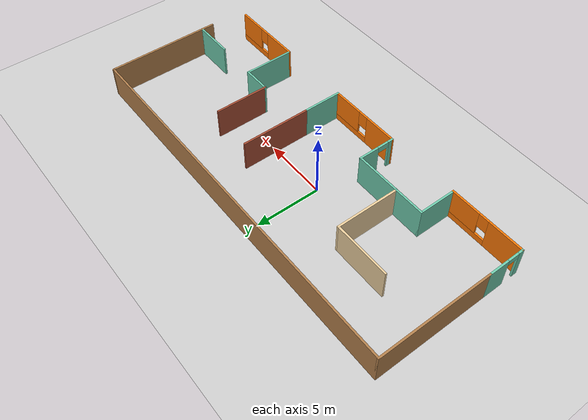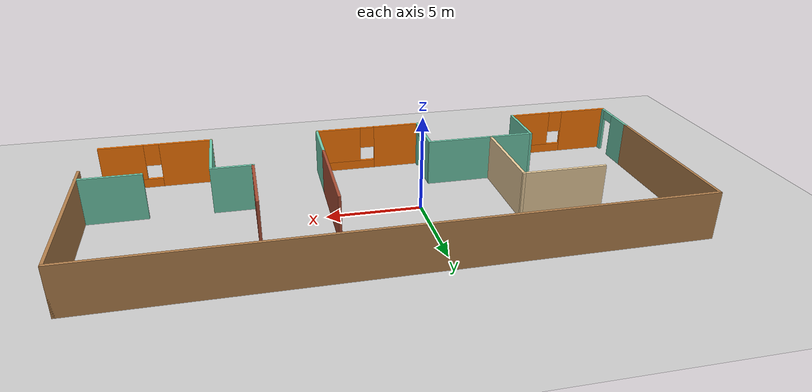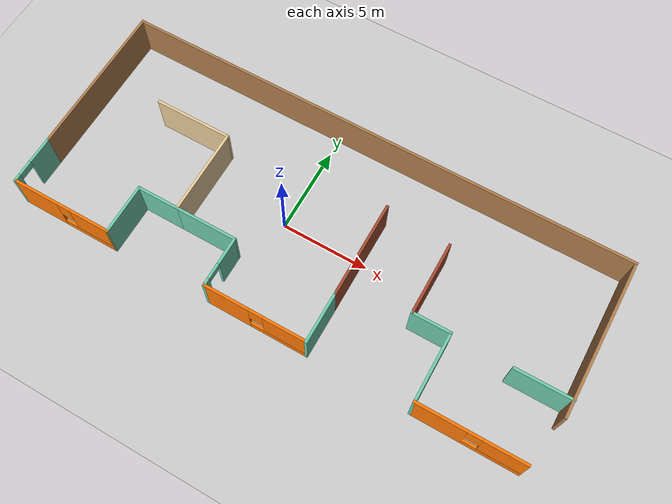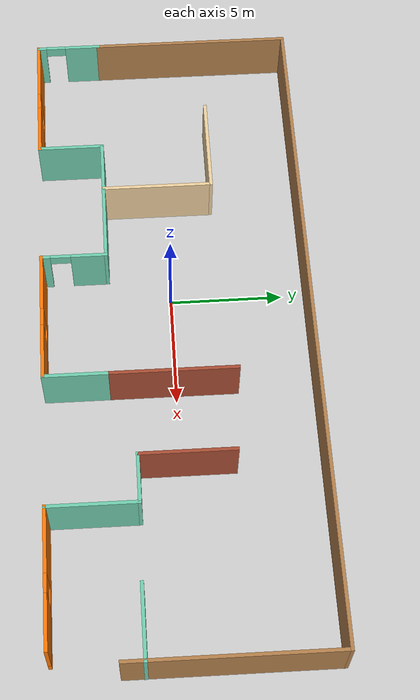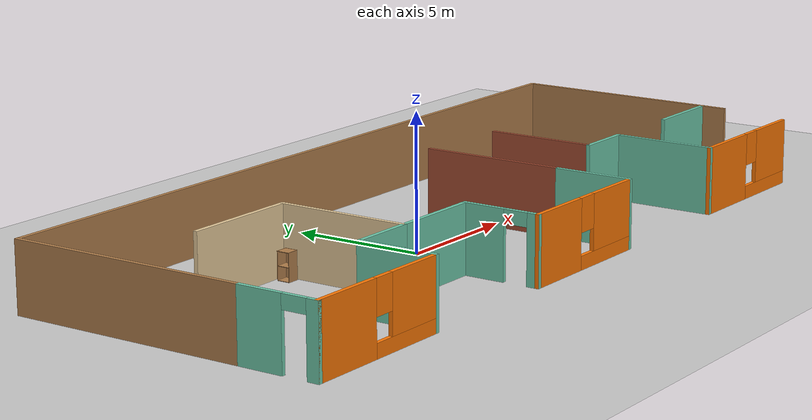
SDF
<sdf version="1.7">
 <world name="default">
  <light name="sun" type="directional">
   <pose>0 0 10 0 -0 0</pose>
   <diffuse>0.8 0.8 0.8 1</diffuse>
   <specular>0.2 0.2 0.2 1</specular>
   <attenuation>
    <range>1000</range>
    <constant>0.9</constant>
    <linear>0.01</linear>
    <quadratic>0.001</quadratic>
   </attenuation>
   <direction>-0.5 0.1 -0.9</direction>
   <spot><inner_angle>0</inner_angle><outer_angle>0</outer_angle><falloff>0</falloff></spot>
  </light>
  <model name="ground_plane">
   <static>1</static>
   <link name="link">
    <collision name="collision">
     <geometry><plane><normal>0 0 1</normal><size>100 100</size></plane></geometry>
     <surface>
      <contact><collide_bitmask>65535</collide_bitmask></contact>
      <friction><ode><mu>100</mu><mu2>50</mu2></ode></friction>
     </surface>
    </collision>
    <visual name="visual">
     <cast_shadows>0</cast_shadows>
     <geometry><plane><normal>0 0 1</normal><size>100 100</size></plane></geometry>
     <material>
      <script><uri>file://media/materials/scripts/gazebo.material</uri><name>Gazebo/Grey</name></script>
     </material>
    </visual>
   </link>
  </model>
  <gravity>0 0 -9.8</gravity>
  <magnetic_field>6e-06 2.3e-05 -4.2e-05</magnetic_field>
  <atmosphere type="adiabatic"/>
  <physics name="default_physics" default="0" type="ode">
   <max_step_size>0.001</max_step_size>
   <real_time_factor>1</real_time_factor>
   <real_time_update_rate>1000</real_time_update_rate>
  </physics>
  <scene><ambient>0.4 0.4 0.4 1</ambient><background>0.7 0.7 0.7 1</background><shadows>1</shadows></scene>
  <spherical_coordinates>
   <surface_model>EARTH_WGS84</surface_model>
   <latitude_deg>0</latitude_deg>
   <longitude_deg>0</longitude_deg>
   <elevation>0</elevation>
   <heading_deg>0</heading_deg>
  </spherical_coordinates>
  <model name="model_0">
   <pose>2.038 0.20634 0 0 -0 0</pose>
   <link name="Wall_22">
    <collision name="Wall_22_Collision">
     <geometry><box><size>9 0.15 2.5</size></box></geometry>
     <pose>0 0 1.25 0 -0 0</pose>
    </collision>
    <visual name="Wall_22_Visual">
     <pose>0 0 1.25 0 -0 0</pose>
     <geometry><box><size>9 0.15 2.5</size></box></geometry>
     <material>
      <script><uri>file://media/materials/scripts/gazebo.material</uri><name>Gazebo/Wood</name></script>
      <ambient>1 1 1 1</ambient>
     </material>
     <meta><layer>0</layer></meta>
    </visual>
    <pose>-14.9327 1.425 0 0 -0 1.5708</pose>
   </link>
   <link name="Wall_23">
    <collision name="Wall_23_Collision">
     <geometry><box><size>30 0.15 2.5</size></box></geometry>
     <pose>0 0 1.25 0 -0 0</pose>
    </collision>
    <visual name="Wall_23_Visual">
     <pose>0 0 1.25 0 -0 0</pose>
     <geometry><box><size>30 0.15 2.5</size></box></geometry>
     <material>
      <script><uri>file://media/materials/scripts/gazebo.material</uri><name>Gazebo/Wood</name></script>
      <ambient>1 1 1 1</ambient>
     </material>
     <meta><layer>0</layer></meta>
    </visual>
    <pose>-0.007664 5.85 0 0 -0 0</pose>
   </link>
   <link name="Wall_24">
    <collision name="Wall_24_Collision">
     <geometry><box><size>9 0.15 2.5</size></box></geometry>
     <pose>0 0 1.25 0 -0 0</pose>
    </collision>
    <visual name="Wall_24_Visual">
     <pose>0 0 1.25 0 -0 0</pose>
     <geometry><box><size>9 0.15 2.5</size></box></geometry>
     <material>
      <script><uri>file://media/materials/scripts/gazebo.material</uri><name>Gazebo/Wood</name></script>
      <ambient>1 1 1 1</ambient>
     </material>
     <meta><layer>0</layer></meta>
    </visual>
    <pose>14.9173 1.425 0 0 0 -1.5708</pose>
   </link>
   <link name="Wall_26">
    <pose>-14.9327 -4.425 0 0 0 -1.5708</pose>
    <visual name="Wall_26_Visual_0">
     <pose>-0.672153 0 1.25 0 -0 0</pose>
     <geometry><box><size>1.65569 0.15 2.5</size></box></geometry>
     <material>
      <script><uri>file://media/materials/scripts/gazebo.material</uri><name>Gazebo/Grey</name></script>
      <ambient>0.435294 0.796078 0.67451 1</ambient>
     </material>
     <meta><layer>0</layer></meta>
    </visual>
    <collision name="Wall_26_Collision_0">
     <geometry><box><size>1.65569 0.15 2.5</size></box></geometry>
     <pose>-0.672153 0 1.25 0 -0 0</pose>
    </collision>
    <visual name="Wall_26_Visual_1">
     <pose>1.27785 0 1.25 0 -0 0</pose>
     <geometry><box><size>0.444305 0.15 2.5</size></box></geometry>
     <material>
      <script><uri>file://media/materials/scripts/gazebo.material</uri><name>Gazebo/Grey</name></script>
      <ambient>0.435294 0.796078 0.67451 1</ambient>
     </material>
     <meta><layer>0</layer></meta>
    </visual>
    <collision name="Wall_26_Collision_1">
     <geometry><box><size>0.444305 0.15 2.5</size></box></geometry>
     <pose>1.27785 0 1.25 0 -0 0</pose>
    </collision>
    <visual name="Wall_26_Visual_2">
     <pose>0.605695 0 2.25 0 -0 0</pose>
     <geometry><box><size>0.9 0.15 0.5</size></box></geometry>
     <material>
      <script><uri>file://media/materials/scripts/gazebo.material</uri><name>Gazebo/Grey</name></script>
      <ambient>0.435294 0.796078 0.67451 1</ambient>
     </material>
     <meta><layer>0</layer></meta>
    </visual>
    <collision name="Wall_26_Collision_2">
     <geometry><box><size>0.9 0.15 0.5</size></box></geometry>
     <pose>0.605695 0 2.25 0 -0 0</pose>
    </collision>
   </link>
   <link name="Wall_27">
    <pose>-12.0077 -5.85 0 0 -0 0</pose>
    <visual name="Wall_27_Visual_0">
     <pose>-1.60488 0 1.25 0 -0 0</pose>
     <geometry><box><size>2.79023 0.15 2.5</size></box></geometry>
     <material>
      <script><uri>file://media/materials/scripts/gazebo.material</uri><name>Gazebo/Grey</name></script>
      <ambient>0.996078 0.47451 0.0196078 1</ambient>
     </material>
     <meta><layer>0</layer></meta>
    </visual>
    <collision name="Wall_27_Collision_0">
     <geometry><box><size>2.79023 0.15 2.5</size></box></geometry>
     <pose>-1.60488 0 1.25 0 -0 0</pose>
    </collision>
    <visual name="Wall_27_Visual_1">
     <pose>1.39512 0 0.25 0 -0 0</pose>
     <geometry><box><size>3.20977 0.15 0.5</size></box></geometry>
     <material>
      <script><uri>file://media/materials/scripts/gazebo.material</uri><name>Gazebo/Grey</name></script>
      <ambient>0.996078 0.47451 0.0196078 1</ambient>
     </material>
     <meta><layer>0</layer></meta>
    </visual>
    <collision name="Wall_27_Collision_1">
     <geometry><box><size>3.20977 0.15 0.5</size></box></geometry>
     <pose>1.39512 0 0.25 0 -0 0</pose>
    </collision>
    <visual name="Wall_27_Visual_2">
     <pose>1.79512 0 1.5 0 -0 0</pose>
     <geometry><box><size>2.40977 0.15 2</size></box></geometry>
     <material>
      <script><uri>file://media/materials/scripts/gazebo.material</uri><name>Gazebo/Grey</name></script>
      <ambient>0.996078 0.47451 0.0196078 1</ambient>
     </material>
     <meta><layer>0</layer></meta>
    </visual>
    <collision name="Wall_27_Collision_2">
     <geometry><box><size>2.40977 0.15 2</size></box></geometry>
     <pose>1.79512 0 1.5 0 -0 0</pose>
    </collision>
    <visual name="Wall_27_Visual_3">
     <pose>0.190231 0 1.9 0 -0 0</pose>
     <geometry><box><size>0.8 0.15 1.2</size></box></geometry>
     <material>
      <script><uri>file://media/materials/scripts/gazebo.material</uri><name>Gazebo/Grey</name></script>
      <ambient>0.996078 0.47451 0.0196078 1</ambient>
     </material>
     <meta><layer>0</layer></meta>
    </visual>
    <collision name="Wall_27_Collision_3">
     <geometry><box><size>0.8 0.15 1.2</size></box></geometry>
     <pose>0.190231 0 1.9 0 -0 0</pose>
    </collision>
   </link>
   <link name="Wall_29">
    <pose>-0.307663 -5.85 0 0 -0 0</pose>
    <visual name="Wall_29_Visual_0">
     <pose>-1.66874 0 1.25 0 -0 0</pose>
     <geometry><box><size>2.66252 0.15 2.5</size></box></geometry>
     <material>
      <script><uri>file://media/materials/scripts/gazebo.material</uri><name>Gazebo/Grey</name></script>
      <ambient>0.996078 0.47451 0.0196078 1</ambient>
     </material>
     <meta><layer>0</layer></meta>
    </visual>
    <collision name="Wall_29_Collision_0">
     <geometry><box><size>2.66252 0.15 2.5</size></box></geometry>
     <pose>-1.66874 0 1.25 0 -0 0</pose>
    </collision>
    <visual name="Wall_29_Visual_1">
     <pose>1.33126 0 0.25 0 -0 0</pose>
     <geometry><box><size>3.33748 0.15 0.5</size></box></geometry>
     <material>
      <script><uri>file://media/materials/scripts/gazebo.material</uri><name>Gazebo/Grey</name></script>
      <ambient>0.996078 0.47451 0.0196078 1</ambient>
     </material>
     <meta><layer>0</layer></meta>
    </visual>
    <collision name="Wall_29_Collision_1">
     <geometry><box><size>3.33748 0.15 0.5</size></box></geometry>
     <pose>1.33126 0 0.25 0 -0 0</pose>
    </collision>
    <visual name="Wall_29_Visual_2">
     <pose>1.73126 0 1.5 0 -0 0</pose>
     <geometry><box><size>2.53748 0.15 2</size></box></geometry>
     <material>
      <script><uri>file://media/materials/scripts/gazebo.material</uri><name>Gazebo/Grey</name></script>
      <ambient>0.996078 0.47451 0.0196078 1</ambient>
     </material>
     <meta><layer>0</layer></meta>
    </visual>
    <collision name="Wall_29_Collision_2">
     <geometry><box><size>2.53748 0.15 2</size></box></geometry>
     <pose>1.73126 0 1.5 0 -0 0</pose>
    </collision>
    <visual name="Wall_29_Visual_3">
     <pose>0.062517 0 1.9 0 -0 0</pose>
     <geometry><box><size>0.8 0.15 1.2</size></box></geometry>
     <material>
      <script><uri>file://media/materials/scripts/gazebo.material</uri><name>Gazebo/Grey</name></script>
      <ambient>0.996078 0.47451 0.0196078 1</ambient>
     </material>
     <meta><layer>0</layer></meta>
    </visual>
    <collision name="Wall_29_Collision_3">
     <geometry><box><size>0.8 0.15 1.2</size></box></geometry>
     <pose>0.062517 0 1.9 0 -0 0</pose>
    </collision>
   </link>
   <link name="Wall_31">
    <pose>11.3923 -5.85 0 0 -0 0</pose>
    <visual name="Wall_31_Visual_0">
     <pose>-1.57479 0 1.25 0 -0 0</pose>
     <geometry><box><size>2.85041 0.15 2.5</size></box></geometry>
     <material>
      <script><uri>file://media/materials/scripts/gazebo.material</uri><name>Gazebo/Grey</name></script>
      <ambient>0.996078 0.47451 0.0196078 1</ambient>
     </material>
     <meta><layer>0</layer></meta>
    </visual>
    <collision name="Wall_31_Collision_0">
     <geometry><box><size>2.85041 0.15 2.5</size></box></geometry>
     <pose>-1.57479 0 1.25 0 -0 0</pose>
    </collision>
    <visual name="Wall_31_Visual_1">
     <pose>1.42521 0 0.25 0 -0 0</pose>
     <geometry><box><size>3.14959 0.15 0.5</size></box></geometry>
     <material>
      <script><uri>file://media/materials/scripts/gazebo.material</uri><name>Gazebo/Grey</name></script>
      <ambient>0.996078 0.47451 0.0196078 1</ambient>
     </material>
     <meta><layer>0</layer></meta>
    </visual>
    <collision name="Wall_31_Collision_1">
     <geometry><box><size>3.14959 0.15 0.5</size></box></geometry>
     <pose>1.42521 0 0.25 0 -0 0</pose>
    </collision>
    <visual name="Wall_31_Visual_2">
     <pose>1.8252 0 1.5 0 -0 0</pose>
     <geometry><box><size>2.34959 0.15 2</size></box></geometry>
     <material>
      <script><uri>file://media/materials/scripts/gazebo.material</uri><name>Gazebo/Grey</name></script>
      <ambient>0.996078 0.47451 0.0196078 1</ambient>
     </material>
     <meta><layer>0</layer></meta>
    </visual>
    <collision name="Wall_31_Collision_2">
     <geometry><box><size>2.34959 0.15 2</size></box></geometry>
     <pose>1.8252 0 1.5 0 -0 0</pose>
    </collision>
    <visual name="Wall_31_Visual_3">
     <pose>0.25041 0 1.9 0 -0 0</pose>
     <geometry><box><size>0.8 0.15 1.2</size></box></geometry>
     <material>
      <script><uri>file://media/materials/scripts/gazebo.material</uri><name>Gazebo/Grey</name></script>
      <ambient>0.996078 0.47451 0.0196078 1</ambient>
     </material>
     <meta><layer>0</layer></meta>
    </visual>
    <collision name="Wall_31_Collision_3">
     <geometry><box><size>0.8 0.15 1.2</size></box></geometry>
     <pose>0.25041 0 1.9 0 -0 0</pose>
    </collision>
   </link>
   <link name="Wall_33">
    <pose>-3.23266 -4.425 0 0 -0 1.5708</pose>
    <visual name="Wall_33_Visual_0">
     <pose>-1.2647 0 1.25 0 -0 0</pose>
     <geometry><box><size>0.470606 0.15 2.5</size></box></geometry>
     <material>
      <script><uri>file://media/materials/scripts/gazebo.material</uri><name>Gazebo/Grey</name></script>
      <ambient>0.435294 0.796078 0.67451 1</ambient>
     </material>
     <meta><layer>0</layer></meta>
    </visual>
    <collision name="Wall_33_Collision_0">
     <geometry><box><size>0.470606 0.15 2.5</size></box></geometry>
     <pose>-1.2647 0 1.25 0 -0 0</pose>
    </collision>
    <visual name="Wall_33_Visual_1">
     <pose>0.685303 0 1.25 0 -0 0</pose>
     <geometry><box><size>1.62939 0.15 2.5</size></box></geometry>
     <material>
      <script><uri>file://media/materials/scripts/gazebo.material</uri><name>Gazebo/Grey</name></script>
      <ambient>0.435294 0.796078 0.67451 1</ambient>
     </material>
     <meta><layer>0</layer></meta>
    </visual>
    <collision name="Wall_33_Collision_1">
     <geometry><box><size>1.62939 0.15 2.5</size></box></geometry>
     <pose>0.685303 0 1.25 0 -0 0</pose>
    </collision>
    <visual name="Wall_33_Visual_2">
     <pose>-0.579394 0 2.25 0 -0 0</pose>
     <geometry><box><size>0.9 0.15 0.5</size></box></geometry>
     <material>
      <script><uri>file://media/materials/scripts/gazebo.material</uri><name>Gazebo/Grey</name></script>
      <ambient>0.435294 0.796078 0.67451 1</ambient>
     </material>
     <meta><layer>0</layer></meta>
    </visual>
    <collision name="Wall_33_Collision_2">
     <geometry><box><size>0.9 0.15 0.5</size></box></geometry>
     <pose>-0.579394 0 2.25 0 -0 0</pose>
    </collision>
   </link>
   <link name="Wall_35">
    <collision name="Wall_35_Collision">
     <geometry><box><size>3 0.15 2.5</size></box></geometry>
     <pose>0 0 1.25 0 -0 0</pose>
    </collision>
    <visual name="Wall_35_Visual">
     <pose>0 0 1.25 0 -0 0</pose>
     <geometry><box><size>3 0.15 2.5</size></box></geometry>
     <material>
      <script><uri>file://media/materials/scripts/gazebo.material</uri><name>Gazebo/Grey</name></script>
      <ambient>0.435294 0.796078 0.67451 1</ambient>
     </material>
     <meta><layer>0</layer></meta>
    </visual>
    <pose>2.61734 -4.425 0 0 -0 1.5708</pose>
   </link>
   <link name="Wall_39">
    <collision name="Wall_39_Collision">
     <geometry><box><size>3 0.15 2.5</size></box></geometry>
     <pose>0 0 1.25 0 -0 0</pose>
    </collision>
    <visual name="Wall_39_Visual">
     <pose>0 0 1.25 0 -0 0</pose>
     <geometry><box><size>3 0.15 2.5</size></box></geometry>
     <material>
      <script><uri>file://media/materials/scripts/gazebo.material</uri><name>Gazebo/Grey</name></script>
      <ambient>0.435294 0.796078 0.67451 1</ambient>
     </material>
     <meta><layer>0</layer></meta>
    </visual>
    <pose>-9.08266 -4.425 0 0 -0 1.5708</pose>
   </link>
   <link name="Wall_41">
    <collision name="Wall_41_Collision">
     <geometry><box><size>5 0.15 2.5</size></box></geometry>
     <pose>0 0 1.25 0 -0 0</pose>
    </collision>
    <visual name="Wall_41_Visual">
     <pose>0 0 1.25 0 -0 0</pose>
     <geometry><box><size>5 0.15 2.5</size></box></geometry>
     <material>
      <script><uri>file://media/materials/scripts/gazebo.material</uri><name>Gazebo/Grey</name></script>
      <ambient>0.921569 0.807843 0.615686 1</ambient>
     </material>
     <meta><layer>0</layer></meta>
    </visual>
    <pose>-6.73411 -0.54307 0 0 -0 1.5708</pose>
   </link>
   <link name="Wall_42">
    <collision name="Wall_42_Collision">
     <geometry><box><size>4.5 0.15 2.5</size></box></geometry>
     <pose>0 0 1.25 0 -0 0</pose>
    </collision>
    <visual name="Wall_42_Visual">
     <pose>0 0 1.25 0 -0 0</pose>
     <geometry><box><size>4.5 0.15 2.5</size></box></geometry>
     <material>
      <script><uri>file://media/materials/scripts/gazebo.material</uri><name>Gazebo/Grey</name></script>
      <ambient>0.921569 0.807843 0.615686 1</ambient>
     </material>
     <meta><layer>0</layer></meta>
    </visual>
    <pose>-8.90911 1.88193 0 0 -0 3.14159</pose>
   </link>
   <link name="Wall_44">
    <collision name="Wall_44_Collision">
     <geometry><box><size>2.5 0.15 2.5</size></box></geometry>
     <pose>0 0 1.25 0 -0 0</pose>
    </collision>
    <visual name="Wall_44_Visual">
     <pose>0 0 1.25 0 -0 0</pose>
     <geometry><box><size>2.5 0.15 2.5</size></box></geometry>
     <material>
      <script><uri>file://media/materials/scripts/gazebo.material</uri><name>Gazebo/Grey</name></script>
      <ambient>0.435294 0.796078 0.67451 1</ambient>
     </material>
     <meta><layer>0</layer></meta>
    </visual>
    <pose>-7.90766 -3 0 0 -0 0</pose>
   </link>
   <link name="Wall_45">
    <collision name="Wall_45_Collision">
     <geometry><box><size>3.65 0.15 2.5</size></box></geometry>
     <pose>0 0 1.25 0 -0 0</pose>
    </collision>
    <visual name="Wall_45_Visual">
     <pose>0 0 1.25 0 -0 0</pose>
     <geometry><box><size>3.65 0.15 2.5</size></box></geometry>
     <material>
      <script><uri>file://media/materials/scripts/gazebo.material</uri><name>Gazebo/Grey</name></script>
      <ambient>0.435294 0.796078 0.67451 1</ambient>
     </material>
     <meta><layer>0</layer></meta>
    </visual>
    <pose>-4.98266 -3 0 0 -0 0</pose>
   </link>
   <link name="Wall_76">
    <collision name="Wall_76_Collision">
     <geometry><box><size>4 0.15 2.5</size></box></geometry>
     <pose>0 0 1.25 0 -0 0</pose>
    </collision>
    <visual name="Wall_76_Visual">
     <pose>0 0 1.25 0 -0 0</pose>
     <geometry><box><size>4 0.15 2.5</size></box></geometry>
     <material>
      <script><uri>file://media/materials/scripts/gazebo.material</uri><name>Gazebo/Grey</name></script>
      <ambient>0.435294 0.796078 0.67451 1</ambient>
     </material>
     <meta><layer>0</layer></meta>
    </visual>
    <pose>8.46734 -3.925 0 0 -0 1.5708</pose>
   </link>
   <link name="Wall_78">
    <collision name="Wall_78_Collision">
     <geometry><box><size>4.25 0.15 2.5</size></box></geometry>
     <pose>0 0 1.25 0 -0 0</pose>
    </collision>
    <visual name="Wall_78_Visual">
     <pose>0 0 1.25 0 -0 0</pose>
     <geometry><box><size>4.25 0.15 2.5</size></box></geometry>
     <material>
      <script><uri>file://media/materials/scripts/gazebo.material</uri><name>Gazebo/Bricks</name></script>
      <ambient>1 1 1 1</ambient>
     </material>
     <meta><layer>0</layer></meta>
    </visual>
    <pose>6.36734 0.05 0 0 -0 1.5708</pose>
   </link>
   <link name="Wall_83">
    <collision name="Wall_83_Collision">
     <geometry><box><size>5.58 0.15 2.5</size></box></geometry>
     <pose>0 0 1.25 0 -0 0</pose>
    </collision>
    <visual name="Wall_83_Visual">
     <pose>0 0 1.25 0 -0 0</pose>
     <geometry><box><size>5.58 0.15 2.5</size></box></geometry>
     <material>
      <script><uri>file://media/materials/scripts/gazebo.material</uri><name>Gazebo/Bricks</name></script>
      <ambient>1 1 1 1</ambient>
     </material>
     <meta><layer>0</layer></meta>
    </visual>
    <pose>2.61734 -0.285 0 0 -0 1.5708</pose>
   </link>
   <link name="Wall_86">
    <collision name="Wall_86_Collision">
     <geometry><box><size>2.25 0.15 2.5</size></box></geometry>
     <pose>0 0 1.25 0 -0 0</pose>
    </collision>
    <visual name="Wall_86_Visual">
     <pose>0 0 1.25 0 -0 0</pose>
     <geometry><box><size>2.25 0.15 2.5</size></box></geometry>
     <material>
      <script><uri>file://media/materials/scripts/gazebo.material</uri><name>Gazebo/Grey</name></script>
      <ambient>0.435294 0.796078 0.67451 1</ambient>
     </material>
     <meta><layer>0</layer></meta>
    </visual>
    <pose>7.41734 -2 0 0 -0 0</pose>
   </link>
   <link name="Wall_88">
    <collision name="Wall_88_Collision">
     <geometry><box><size>3.25 0.15 2.5</size></box></geometry>
     <pose>0 0 1.25 0 -0 0</pose>
    </collision>
    <visual name="Wall_88_Visual">
     <pose>0 0 1.25 0 -0 0</pose>
     <geometry><box><size>3.25 0.15 2.5</size></box></geometry>
     <material>
      <script><uri>file://media/materials/scripts/gazebo.material</uri><name>Gazebo/Grey</name></script>
      <ambient>0.435294 0.796078 0.67451 1</ambient>
     </material>
     <meta><layer>0</layer></meta>
    </visual>
    <pose>13.3827 -2.0658 0 0 -0 3.14159</pose>
   </link>
   <static>1</static>
  </model>
  <model name="cabinet">
   <static>1</static>
   <link name="cabinet_bottom_plate">
    <inertial>
     <pose>0 0 -1 0 -0 0</pose>
     <inertia><ixx>2.05</ixx><ixy>0</ixy><ixz>0</ixz><iyy>2.05</iyy><iyz>0</iyz><izz>2.05</izz></inertia>
     <mass>25</mass>
    </inertial>
    <collision name="cabinet_bottom_plate_geom">
     <pose>0 0 0.01 0 -0 0</pose>
     <geometry><box><size>0.45 0.45 0.02</size></box></geometry>
    </collision>
    <visual name="cabinet_bottom_plate_geom_visual">
     <pose>0 0 0.01 0 -0 0</pose>
     <geometry><box><size>0.45 0.45 0.02</size></box></geometry>
     <material>
      <script><uri>file://media/materials/scripts/gazebo.material</uri><name>Gazebo/Wood</name></script>
     </material>
    </visual>
    <collision name="cabinet_bottom_plate_geom_cabinet_back_plate">
     <pose>0.235 0 0.51 0 -0 0</pose>
     <geometry><box><size>0.02 0.45 1.02</size></box></geometry>
    </collision>
    <visual name="cabinet_bottom_plate_geom_cabinet_back_plate_visual">
     <pose>0.235 0 0.51 0 -0 0</pose>
     <geometry><box><size>0.02 0.45 1.02</size></box></geometry>
     <material>
      <script><uri>file://media/materials/scripts/gazebo.material</uri><name>Gazebo/Wood</name></script>
     </material>
    </visual>
    <collision name="cabinet_bottom_plate_geom_cabinet_left_plate">
     <pose>0 0.235 0.51 0 -0 0</pose>
     <geometry><box><size>0.45 0.02 1.02</size></box></geometry>
    </collision>
    <visual name="cabinet_bottom_plate_geom_cabinet_left_plate_visual">
     <pose>0 0.235 0.51 0 -0 0</pose>
     <geometry><box><size>0.45 0.02 1.02</size></box></geometry>
     <material>
      <script><uri>file://media/materials/scripts/gazebo.material</uri><name>Gazebo/Wood</name></script>
     </material>
    </visual>
    <collision name="cabinet_bottom_plate_geom_cabinet_middle_plate">
     <pose>0 0 0.51 0 -0 0</pose>
     <geometry><box><size>0.45 0.45 0.02</size></box></geometry>
    </collision>
    <visual name="cabinet_bottom_plate_geom_cabinet_middle_plate_visual">
     <pose>0 0 0.51 0 -0 0</pose>
     <geometry><box><size>0.45 0.45 0.02</size></box></geometry>
     <material>
      <script><uri>file://media/materials/scripts/gazebo.material</uri><name>Gazebo/Wood</name></script>
     </material>
    </visual>
    <collision name="cabinet_bottom_plate_geom_cabinet_right_plate">
     <pose>0 -0.235 0.51 0 -0 0</pose>
     <geometry><box><size>0.45 0.02 1.02</size></box></geometry>
    </collision>
    <visual name="cabinet_bottom_plate_geom_cabinet_right_plate_visual">
     <pose>0 -0.235 0.51 0 -0 0</pose>
     <geometry><box><size>0.45 0.02 1.02</size></box></geometry>
     <material>
      <script><uri>file://media/materials/scripts/gazebo.material</uri><name>Gazebo/Wood</name></script>
     </material>
    </visual>
    <collision name="cabinet_bottom_plate_geom_cabinet_top_plate">
     <pose>0 0 1.01 0 -0 0</pose>
     <geometry><box><size>0.45 0.45 0.02</size></box></geometry>
    </collision>
    <visual name="cabinet_bottom_plate_geom_cabinet_top_plate_visual">
     <pose>0 0 1.01 0 -0 0</pose>
     <geometry><box><size>0.45 0.45 0.02</size></box></geometry>
     <material>
      <script><uri>file://media/materials/scripts/gazebo.material</uri><name>Gazebo/Wood</name></script>
     </material>
    </visual>
   </link>
   <pose>-5.05997 1.64912 0 0 -0 0</pose>
  </model>
 </world>
</sdf>
